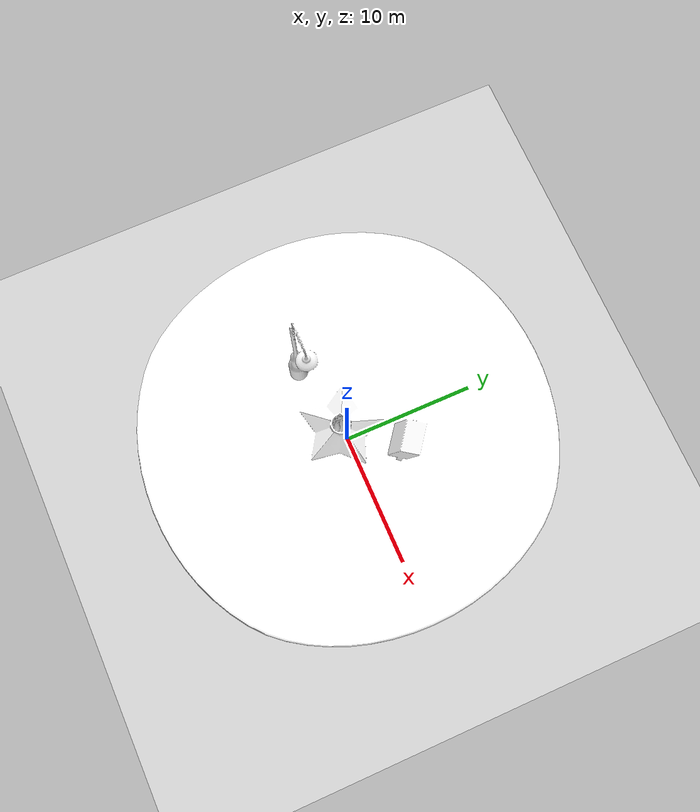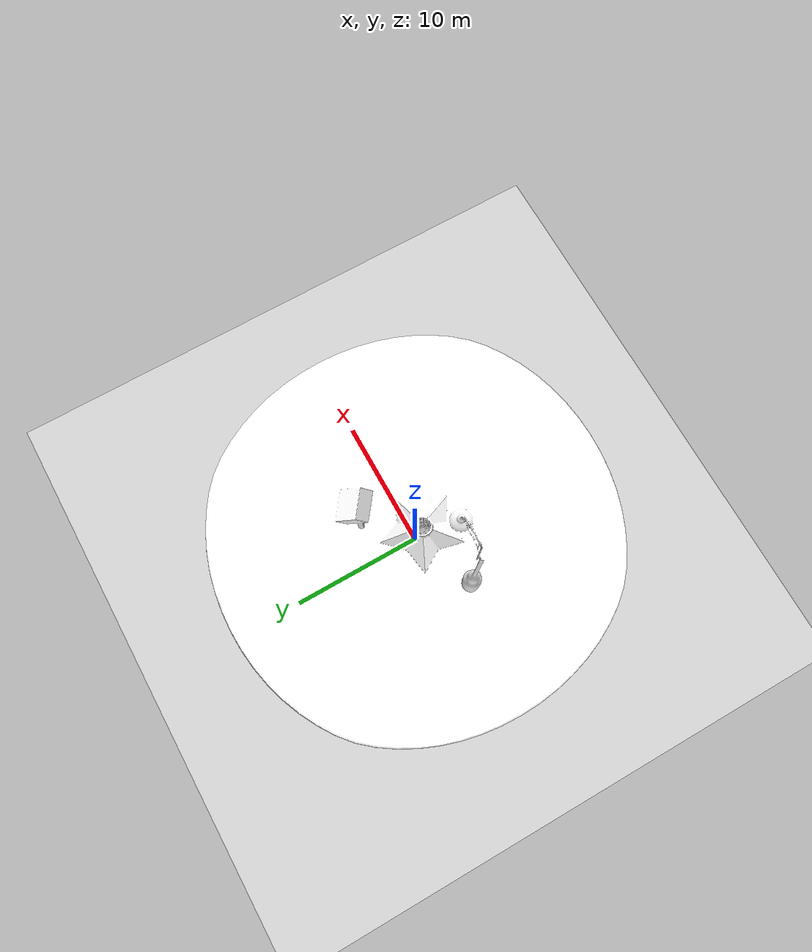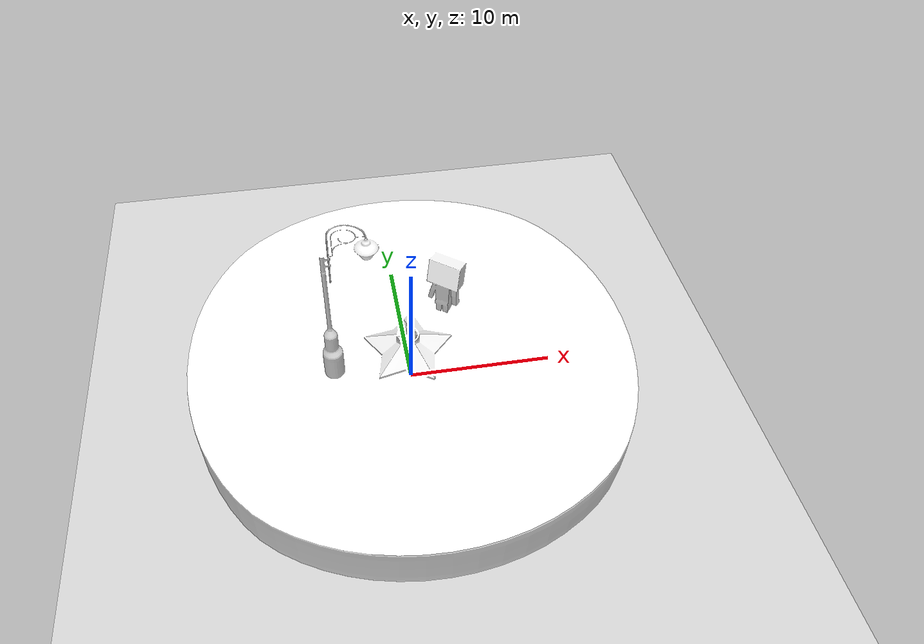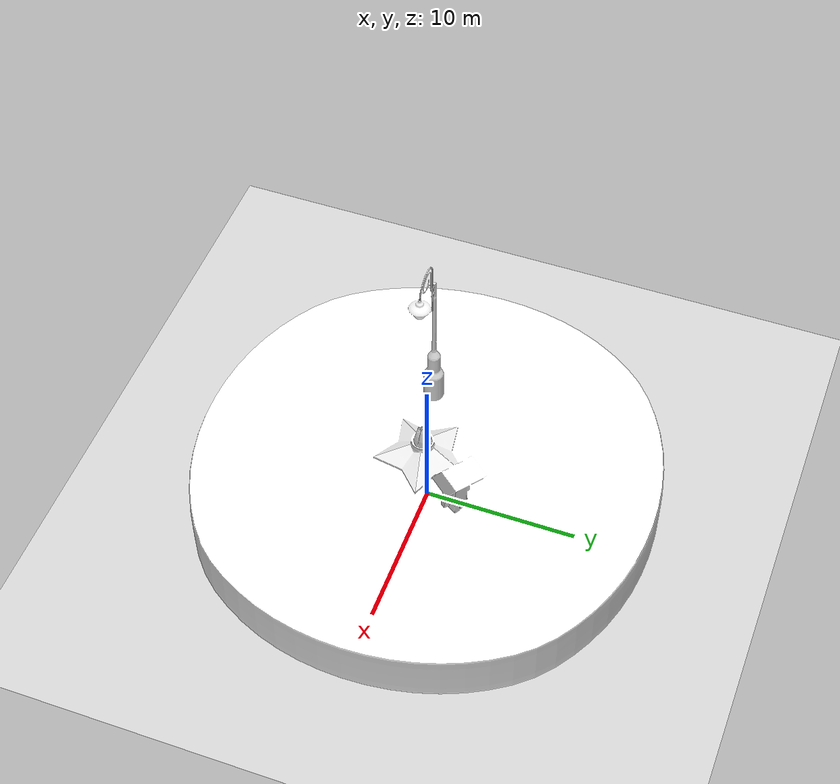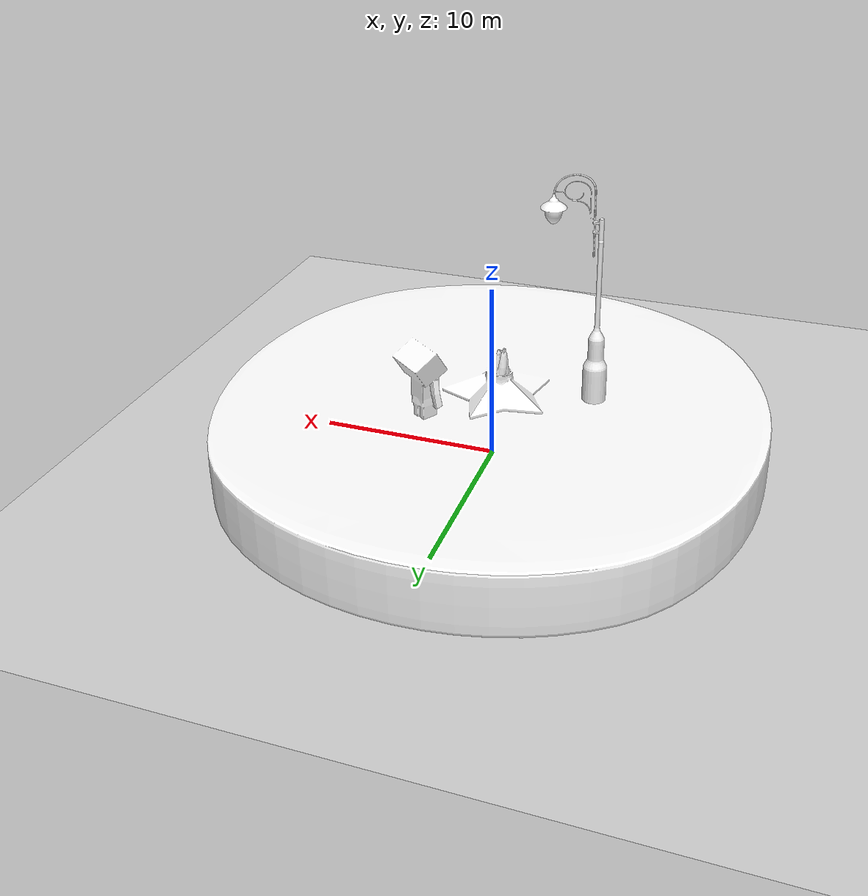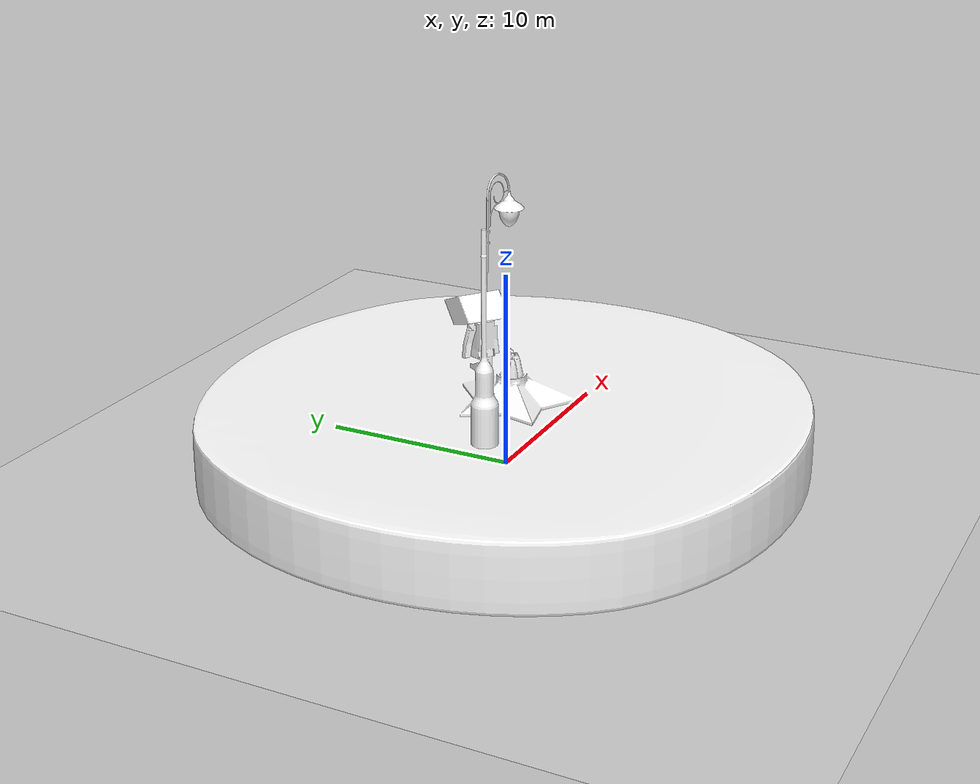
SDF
<?xml version="1.0" ?>
<sdf version="1.6">
  <world name="danbo_world">
    <plugin
      filename="ignition-gazebo-physics-system"
      name="ignition::gazebo::systems::Physics">
    </plugin>
    <plugin
      filename="ignition-gazebo-user-commands-system"
      name="ignition::gazebo::systems::UserCommands">
    </plugin>
    <plugin
      filename="ignition-gazebo-scene-broadcaster-system"
      name="ignition::gazebo::systems::SceneBroadcaster">
    </plugin>
    <plugin
      filename="ignition-gazebo-contact-system"
      name="ignition::gazebo::systems::Contact">
    </plugin>

    <light type="directional" name="sun">
      <cast_shadows>true</cast_shadows>
      <pose>0 0 10 0 0 0</pose>
      <diffuse>1 1 1 1</diffuse>
      <specular>0.5 0.5 0.5 1</specular>
      <attenuation>
        <range>1000</range>
        <constant>0.9</constant>
        <linear>0.01</linear>
        <quadratic>0.001</quadratic>
      </attenuation>
      <direction>-0.5 0.1 -0.9</direction>
    </light>

    <include>
      <!-- Shift world platform above z = 0 -->
      <pose>0.8703 3.1635 6.19437 0 0 0</pose>
      <uri>danbo_scene</uri>
    </include>

    <!-- Add static ground plane so everything doesn't fall to -infinity when
         physics starts. -->
    <model name="ground_plane">
      <static>true</static>
      <link name="link">
        <collision name="collision">
          <geometry>
            <plane>
              <normal>0 0 1</normal>
              <size>20 20</size>
            </plane>
          </geometry>
        </collision>
        <visual name="visual">
          <geometry>
            <plane>
              <normal>0 0 1</normal>
              <size>20 20</size>
            </plane>
          </geometry>
          <material>
            <ambient>0.8 0.8 0.8 0</ambient>
            <diffuse>0.8 0.8 0.8 0</diffuse>
            <specular>0.8 0.8 0.8 0</specular>
          </material>
        </visual>
      </link>
    </model>

  </world>
</sdf>

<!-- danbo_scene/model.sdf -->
<sdf version="1.8">
  <model name="danbo_scene">
    <link name="scene_link">
      <visual name="Cube.001">
        <geometry>
          <mesh>
            <uri>meshes/model.dae</uri>
            <submesh>
              <name>Cube.001</name>
            </submesh>
          </mesh>
        </geometry>
        <material>
          <diffuse>1.0 1.0 1.0 1.0</diffuse>
          <specular>0.0 0.0 0.0 1.0</specular>
          <pbr>
            <metal>
              <albedo_map>materials/textures/Box_albedo.jpg</albedo_map>
              <normal_map>materials/textures/Box_normal.png</normal_map>
              <metalness_map>materials/textures/Box_metallic.jpg</metalness_map>
              <roughness_map>materials/textures/Box_roughness.jpg</roughness_map>
              <ambient_occlusion_map>materials/textures/Box_AO.jpg</ambient_occlusion_map>
            </metal>
          </pbr>
        </material>
      </visual>
      <visual name="Cube.002">
        <geometry>
          <mesh>
            <uri>meshes/model.dae</uri>
            <submesh>
              <name>Cube.002</name>
            </submesh>
          </mesh>
        </geometry>
        <material>
          <diffuse>1.0 1.0 1.0 1.0</diffuse>
          <specular>0.0 0.0 0.0 1.0</specular>
          <pbr>
            <metal>
              <albedo_map>materials/textures/Box_albedo.jpg</albedo_map>
              <normal_map>materials/textures/Box_normal.png</normal_map>
              <metalness_map>materials/textures/Box_metallic.jpg</metalness_map>
              <roughness_map>materials/textures/Box_roughness.jpg</roughness_map>
              <ambient_occlusion_map>materials/textures/Box_AO.jpg</ambient_occlusion_map>
            </metal>
          </pbr>
        </material>
      </visual>
      <visual name="Plane">
        <geometry>
          <mesh>
            <uri>meshes/model.dae</uri>
            <submesh>
              <name>Plane</name>
            </submesh>
          </mesh>
        </geometry>
        <material>
          <diffuse>1.0 1.0 1.0 1.0</diffuse>
          <specular>0.0 0.0 0.0 1.0</specular>
          <pbr>
            <metal>
              <albedo_map>materials/textures/Box_albedo.jpg</albedo_map>
              <normal_map>materials/textures/Box_normal.png</normal_map>
              <metalness_map>materials/textures/Box_metallic.jpg</metalness_map>
              <roughness_map>materials/textures/Box_roughness.jpg</roughness_map>
              <ambient_occlusion_map>materials/textures/Box_AO.jpg</ambient_occlusion_map>
            </metal>
          </pbr>
        </material>
      </visual>
      <visual name="Cube.003">
        <geometry>
          <mesh>
            <uri>meshes/model.dae</uri>
            <submesh>
              <name>Cube.003</name>
            </submesh>
          </mesh>
        </geometry>
        <material>
          <diffuse>1.0 1.0 1.0 1.0</diffuse>
          <specular>0.0 0.0 0.0 1.0</specular>
          <pbr>
            <metal>
              <albedo_map>materials/textures/Box_albedo.jpg</albedo_map>
              <normal_map>materials/textures/Box_normal.png</normal_map>
              <metalness_map>materials/textures/Box_metallic.jpg</metalness_map>
              <roughness_map>materials/textures/Box_roughness.jpg</roughness_map>
              <ambient_occlusion_map>materials/textures/Box_AO.jpg</ambient_occlusion_map>
            </metal>
          </pbr>
        </material>
      </visual>
      <visual name="Cube.004">
        <geometry>
          <mesh>
            <uri>meshes/model.dae</uri>
            <submesh>
              <name>Cube.004</name>
            </submesh>
          </mesh>
        </geometry>
        <material>
          <diffuse>1.0 1.0 1.0 1.0</diffuse>
          <specular>0.0 0.0 0.0 1.0</specular>
          <pbr>
            <metal>
              <albedo_map>materials/textures/Box_albedo.jpg</albedo_map>
              <normal_map>materials/textures/Box_normal.png</normal_map>
              <metalness_map>materials/textures/Box_metallic.jpg</metalness_map>
              <roughness_map>materials/textures/Box_roughness.jpg</roughness_map>
              <ambient_occlusion_map>materials/textures/Box_AO.jpg</ambient_occlusion_map>
            </metal>
          </pbr>
        </material>
      </visual>
      <visual name="Cube.005">
        <geometry>
          <mesh>
            <uri>meshes/model.dae</uri>
            <submesh>
              <name>Cube.005</name>
            </submesh>
          </mesh>
        </geometry>
        <material>
          <diffuse>1.0 1.0 1.0 1.0</diffuse>
          <specular>0.0 0.0 0.0 1.0</specular>
          <pbr>
            <metal>
              <albedo_map>materials/textures/Box_albedo.jpg</albedo_map>
              <normal_map>materials/textures/Box_normal.png</normal_map>
              <metalness_map>materials/textures/Box_metallic.jpg</metalness_map>
              <roughness_map>materials/textures/Box_roughness.jpg</roughness_map>
              <ambient_occlusion_map>materials/textures/Box_AO.jpg</ambient_occlusion_map>
            </metal>
          </pbr>
        </material>
      </visual>
      <visual name="Cube.006">
        <geometry>
          <mesh>
            <uri>meshes/model.dae</uri>
            <submesh>
              <name>Cube.006</name>
            </submesh>
          </mesh>
        </geometry>
        <material>
          <diffuse>1.0 1.0 1.0 1.0</diffuse>
          <specular>0.0 0.0 0.0 1.0</specular>
          <pbr>
            <metal>
              <albedo_map>materials/textures/Box_albedo.jpg</albedo_map>
              <normal_map>materials/textures/Box_normal.png</normal_map>
              <metalness_map>materials/textures/Box_metallic.jpg</metalness_map>
              <roughness_map>materials/textures/Box_roughness.jpg</roughness_map>
              <ambient_occlusion_map>materials/textures/Box_AO.jpg</ambient_occlusion_map>
            </metal>
          </pbr>
        </material>
      </visual>
      <visual name="Cube.007">
        <geometry>
          <mesh>
            <uri>meshes/model.dae</uri>
            <submesh>
              <name>Cube.007</name>
            </submesh>
          </mesh>
        </geometry>
        <material>
          <diffuse>1.0 1.0 1.0 1.0</diffuse>
          <specular>0.0 0.0 0.0 1.0</specular>
          <pbr>
            <metal>
              <albedo_map>materials/textures/Box_albedo.jpg</albedo_map>
              <normal_map>materials/textures/Box_normal.png</normal_map>
              <metalness_map>materials/textures/Box_metallic.jpg</metalness_map>
              <roughness_map>materials/textures/Box_roughness.jpg</roughness_map>
              <ambient_occlusion_map>materials/textures/Box_AO.jpg</ambient_occlusion_map>
            </metal>
          </pbr>
        </material>
      </visual>
      <visual name="Plane.001">
        <geometry>
          <mesh>
            <uri>meshes/model.dae</uri>
            <submesh>
              <name>Plane.001</name>
            </submesh>
          </mesh>
        </geometry>
        <material>
          <diffuse>1.0 1.0 1.0 1.0</diffuse>
          <specular>0.0 0.0 0.0 1.0</specular>
          <pbr>
            <metal>
              <albedo_map>materials/textures/Box_albedo.jpg</albedo_map>
              <normal_map>materials/textures/Box_normal.png</normal_map>
              <metalness_map>materials/textures/Box_metallic.jpg</metalness_map>
              <roughness_map>materials/textures/Box_roughness.jpg</roughness_map>
              <ambient_occlusion_map>materials/textures/Box_AO.jpg</ambient_occlusion_map>
            </metal>
          </pbr>
        </material>
      </visual>
      <visual name="Box">
        <geometry>
          <mesh>
            <uri>meshes/model.dae</uri>
            <submesh>
              <name>Box</name>
            </submesh>
          </mesh>
        </geometry>
        <material>
          <diffuse>1.0 1.0 1.0 1.0</diffuse>
          <specular>0.0 0.0 0.0 1.0</specular>
          <pbr>
            <metal>
              <albedo_map>materials/textures/Box_albedo.jpg</albedo_map>
              <normal_map>materials/textures/Box_normal.png</normal_map>
              <metalness_map>materials/textures/Box_metallic.jpg</metalness_map>
              <roughness_map>materials/textures/Box_roughness.jpg</roughness_map>
              <ambient_occlusion_map>materials/textures/Box_AO.jpg</ambient_occlusion_map>
            </metal>
          </pbr>
        </material>
      </visual>
      <visual name="FireBase">
        <geometry>
          <mesh>
            <uri>meshes/model.dae</uri>
            <submesh>
              <name>FireBase</name>
            </submesh>
          </mesh>
        </geometry>
        <material>
          <diffuse>1.0 1.0 1.0 1.0</diffuse>
          <specular>0.0 0.0 0.0 1.0</specular>
          <pbr>
            <metal>
              <albedo_map>materials/textures/Star_Metal_albedo.jpg</albedo_map>
              <metalness_map>materials/textures/Star_Metal_metallic.jpg</metalness_map>
              <roughness_map>materials/textures/Star_Metal_roughness.jpg</roughness_map>
              <ambient_occlusion_map>materials/textures/Star_Metal_AO.jpg</ambient_occlusion_map>
            </metal>
          </pbr>
        </material>
      </visual>
      <visual name="Plane.004">
        <geometry>
          <mesh>
            <uri>meshes/model.dae</uri>
            <submesh>
              <name>Plane.004</name>
            </submesh>
          </mesh>
        </geometry>
        <material>
          <diffuse>1.0 1.0 1.0 1.0</diffuse>
          <specular>0.0 0.0 0.0 1.0</specular>
          <pbr>
            <metal>
              <albedo_map>materials/textures/Lamp_albedo.jpg</albedo_map>
              <normal_map>materials/textures/Lamp_normal.png</normal_map>
              <metalness_map>materials/textures/Lamp_metallic.jpg</metalness_map>
              <roughness_map>materials/textures/Lamp_roughness.jpg</roughness_map>
              <ambient_occlusion_map>materials/textures/Lamp_AO.jpg</ambient_occlusion_map>
            </metal>
          </pbr>
        </material>
      </visual>
      <visual name="Plane.005">
        <geometry>
          <mesh>
            <uri>meshes/model.dae</uri>
            <submesh>
              <name>Plane.005</name>
            </submesh>
          </mesh>
        </geometry>
        <material>
          <diffuse>1.0 1.0 1.0 1.0</diffuse>
          <specular>0.0 0.0 0.0 1.0</specular>
          <pbr>
            <metal>
              <albedo_map>materials/textures/Metal_albedo.jpg</albedo_map>
              <metalness_map>materials/textures/Metal_metallic.jpg</metalness_map>
              <roughness_map>materials/textures/Metal_roughness.jpg</roughness_map>
              <ambient_occlusion_map>materials/textures/Metal_AO.jpg</ambient_occlusion_map>
            </metal>
          </pbr>
        </material>
      </visual>
      <visual name="Lamp">
        <geometry>
          <mesh>
            <uri>meshes/model.dae</uri>
            <submesh>
              <name>Lamp</name>
            </submesh>
          </mesh>
        </geometry>
        <material>
          <diffuse>1.0 1.0 1.0 1.0</diffuse>
          <specular>0.0 0.0 0.0 1.0</specular>
          <pbr>
            <metal>
              <albedo_map>materials/textures/Metal_albedo.jpg</albedo_map>
              <metalness_map>materials/textures/Metal_metallic.jpg</metalness_map>
              <roughness_map>materials/textures/Metal_roughness.jpg</roughness_map>
              <ambient_occlusion_map>materials/textures/Metal_AO.jpg</ambient_occlusion_map>
            </metal>
          </pbr>
        </material>
      </visual>
      <visual name="Base">
        <geometry>
          <mesh>
            <uri>meshes/model.dae</uri>
            <submesh>
              <name>Base</name>
            </submesh>
          </mesh>
        </geometry>
        <material>
          <diffuse>1.0 1.0 1.0 1.0</diffuse>
          <specular>0.0 0.0 0.0 1.0</specular>
          <pbr>
            <metal>
              <albedo_map>materials/textures/Base_albedo.jpg</albedo_map>
              <normal_map>materials/textures/Base_normal.png</normal_map>
              <metalness_map>materials/textures/Base_metallic.jpg</metalness_map>
              <roughness_map>materials/textures/Base_roughness.jpg</roughness_map>
              <ambient_occlusion_map>materials/textures/Base_AO.jpg</ambient_occlusion_map>
            </metal>
          </pbr>
        </material>
      </visual>
      <visual name="Paper">
        <geometry>
          <mesh>
            <uri>meshes/model.dae</uri>
            <submesh>
              <name>Paper</name>
            </submesh>
          </mesh>
        </geometry>
        <material>
          <diffuse>1.0 1.0 1.0 1.0</diffuse>
          <specular>0.0 0.0 0.0 1.0</specular>
          <pbr>
            <metal>
              <albedo_map>materials/textures/Paper_albedo.jpg</albedo_map>
              <normal_map>materials/textures/Paper_normal.png</normal_map>
              <metalness_map>materials/textures/Paper_metallic.jpg</metalness_map>
              <roughness_map>materials/textures/Paper_roughness.jpg</roughness_map>
              <ambient_occlusion_map>materials/textures/Paper_AO.jpg</ambient_occlusion_map>
            </metal>
          </pbr>
        </material>
      </visual>
      <visual name="Fire">
        <geometry>
          <mesh>
            <uri>meshes/model.dae</uri>
            <submesh>
              <name>Fire</name>
            </submesh>
          </mesh>
        </geometry>
        <material>
          <diffuse>1.0 1.0 1.0 1.0</diffuse>
          <specular>0.0 0.0 0.0 1.0</specular>
          <pbr>
            <metal>
              <albedo_map>materials/textures/Fire_albedo.jpg</albedo_map>
              <normal_map>materials/textures/Fire_normal.png</normal_map>
              <metalness_map>materials/textures/Fire_metallic.jpg</metalness_map>
              <roughness_map>materials/textures/Fire_roughness.jpg</roughness_map>
              <ambient_occlusion_map>materials/textures/Fire_AO.jpg</ambient_occlusion_map>
            </metal>
          </pbr>
        </material>
      </visual>
      <collision name="collision">
        <geometry>
          <mesh>
            <uri>meshes/model.dae</uri>
          </mesh>
        </geometry>
        <surface/>
        <contact/>
        <collide_bitmask>0x01</collide_bitmask>
      </collision>
    </link>
  </model>
  <static>true</static>
</sdf>
